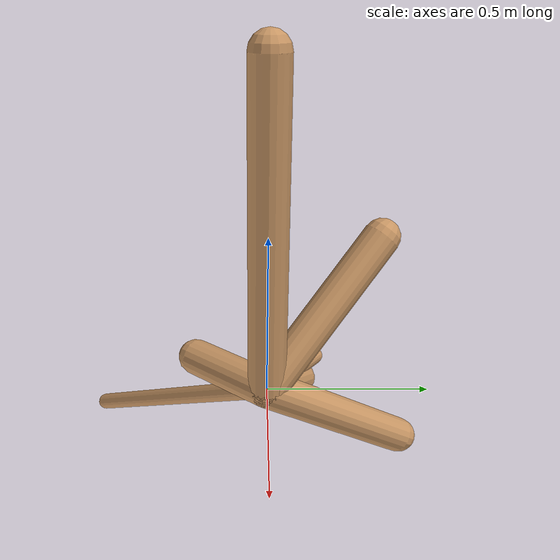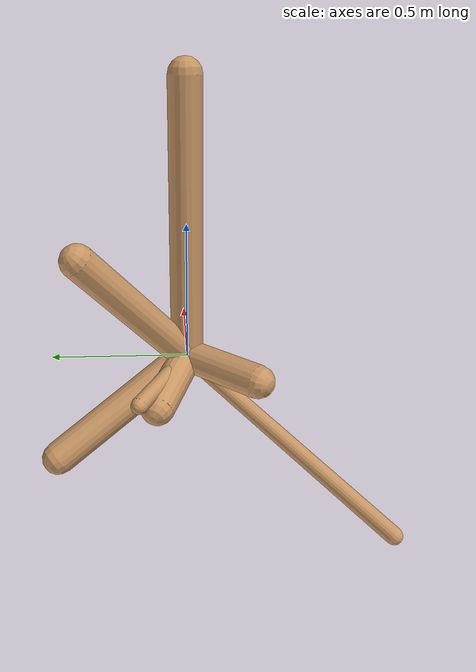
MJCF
<!--
                    joint_number: 6
                    -->
                    <mujoco model="randomrobot">
                        <compiler angle="degree" coordinate="global" inertiafromgeom="true"/>
                        <default>
                        <joint armature="0.01" damping=".1" limited="true"/>
                        <geom conaffinity="0" condim="3" contype="1" density="1000" friction="0.8 .1 .1" rgba="0.8 0.6 .4 1"/>
                        </default>
                        <option integrator="RK4" timestep="0.002"/>
                        <worldbody>
                    <body name='torso' pos='0.00 0.00 0.95'><geom fromto='0 0 0 0.00 0.00 1.00' name='torso_geom' size='0.06' type='capsule'/><inertial mass='0.3'/><body name='L0_D1' pos='0.00 0.00 0.15'><joint axis='0 1 0' name='L0_D1_joint' pos='0 0 0' range='1.36 32.69' type='hinge'/><geom fromto='0 0 0 -0.23 0.11 -0.10' name='L0_D1_geom' size='0.06' type='capsule'/><inertial mass='0.3'/><body name='L1_D0' pos='-0.02 0.01 -0.01'><joint axis='0 0 1' name='L1_D0_joint' pos='0 0 0' range='63.62 114.13' type='hinge'/><geom fromto='0 0 0 -0.19 0.47 -0.31' name='L1_D0_geom' size='0.06' type='capsule'/><inertial mass='0.3'/></body><body name='L2_D0' pos='-0.23 0.11 -0.10'><joint axis='0 0 1' name='L2_D0_joint' pos='0 0 0' range='123.77 128.82' type='hinge'/><geom fromto='0 0 0 -0.55 -0.65 -0.41' name='L2_D0_geom' size='0.03' type='capsule'/><inertial mass='0.3'/></body></body><body name='L3_D1' pos='0.00 0.00 0.55'><joint axis='0 0 1' name='L3_D1_joint' pos='0 0 0' range='41.50 129.03' type='hinge'/><geom fromto='0 0 0 -0.21 0.36 0.43' name='L3_D1_geom' size='0.06' type='capsule'/><inertial mass='0.3'/><body name='L4_D0' pos='-0.06 0.10 0.12'><joint axis='0 0 1' name='L4_D0_joint' pos='0 0 0' range='42.18 69.35' type='hinge'/><geom fromto='0 0 0 -0.30 0.17 -0.05' name='L4_D0_geom' size='0.03' type='capsule'/><inertial mass='0.3'/></body></body><body name='L5_D1' pos='0.00 0.00 0.45'><joint axis='1 0 0' name='L5_D1_joint' pos='0 0 0' range='31.51 37.94' type='hinge'/><geom fromto='0 0 0 -0.22 -0.24 -0.01' name='L5_D1_geom' size='0.06' type='capsule'/><inertial mass='0.3'/></body></body>
                        </worldbody>
                    </mujoco>
